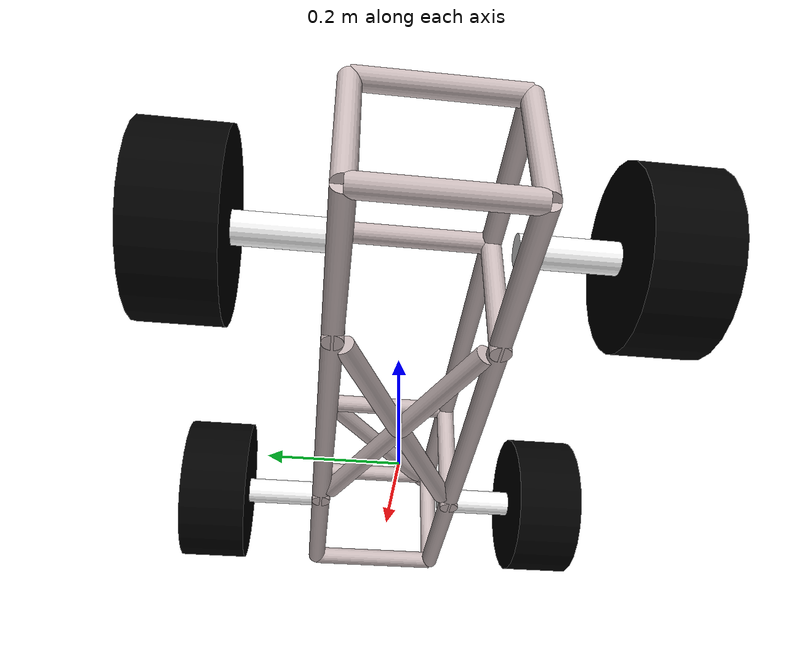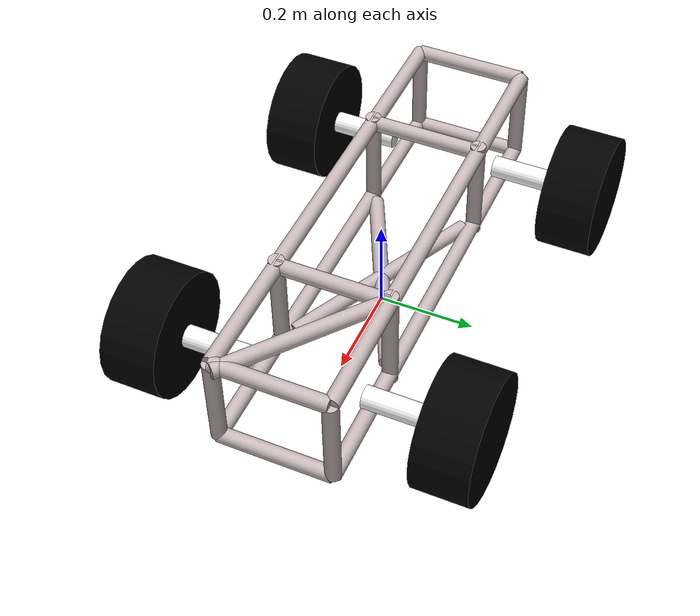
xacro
<?xml version="1.0"?>
<robot xmlns:xacro="http://www.ros.org/wiki/xacro">

    <xacro:include filename="inertial_macros.xacro"/>

    <!-- Colour options for robot -->
    <material name="blue">
        <color rgba="0.2 0.2 1.0 1.0"/>
    </material>

    <material name="black">
        <color rgba="0.0 0.0 0.0 1.0"/>
    </material>

    <material name="white">
        <color rgba="1.0 1.0 1.0 1.0"/>
    </material>

    <material name="silver">
        <!--color rgba="0.62 0.62 0.62 0.5"/-->
        <color rgba="0.78 0.72 0.72 1.0"/>
    </material>

    <!-- Base link is centre of the 2 drive wheels -->
    <link name="base_link">

    </link>

    <!-- Left front wheel link -->

    <joint name="left_front_wheel_joint" type="continuous">
        <parent link="base_link" />
        <child link="left_front_wheel"/>
        <origin xyz="-0.34264 -0.309055 0.12725" rpy="-${pi/2} 0 0"/>
        <axis xyz="-0.34264 -0.309055 0.12725"/>
    </joint>

    <link name="left_front_wheel">
        <visual>
            <origin xyz="0 0 0"/>
            <geometry>
                <cylinder radius="0.12725" length="0.1144"/>
            </geometry>
            <material name="black"/>
        </visual>
        <collision>
            <origin xyz="0 0 0"/>v
            <geometry>
                <cylinder radius="0.12725" length="0.1144"/>
            </geometry>
        </collision>
        <xacro:inertial_cylinder mass="0.1" length="0.1144" radius="0.12725">
            <origin xyz="0 0 0" rpy="0 0 0"/>
        </xacro:inertial_cylinder>
    </link>

    <!-- To show colour on gazebo -->

    <gazebo reference="left_front_wheel">
        <material>Gazebo/Black</material>
    </gazebo>

    <!-- Left back wheel link -->

    <joint name="left_back_wheel_joint" type="continuous">
        <parent link="base_link" />
        <child link="left_back_wheel"/>
        <origin xyz="0.34264 -0.309055 0.12725" rpy="-${pi/2} 0 0"/>
        <axis xyz="0.34264 -0.309055 0.12725"/>
    </joint>

    <link name="left_back_wheel">
        <visual>
            <origin xyz="0 0 0"/>
            <geometry>
                <cylinder radius="0.12725" length="0.1144"/>
            </geometry>
            <material name="black"/>
        </visual>
        <collision>
            <origin xyz="0 0 0"/>
            <geometry>
                <cylinder radius="0.12725" length="0.1144"/>
            </geometry>
        </collision>
        <xacro:inertial_cylinder mass="0.1" length="0.1144" radius="0.12725">
            <origin xyz="0 0 0" rpy="0 0 0"/>
        </xacro:inertial_cylinder>
    </link>

    <gazebo reference="left_back_wheel">
        <material>Gazebo/Black</material>
    </gazebo>

     <!-- Right front wheel link -->

    <joint name="right_front_wheel_joint" type="continuous">
        <parent link="base_link" />
        <child link="right_front_wheel"/>
        <origin xyz="-0.34264 0.309055 0.12725" rpy="${pi/2} 0 0"/>
        <axis xyz="-0.34264 0.309055 0.12725"/>
    </joint>

    <link name="right_front_wheel">
        <visual>
            <origin xyz="0 0 0"/>
            <geometry>
                <cylinder radius="0.12725" length="0.1144"/>
            </geometry>
            <material name="black"/>
        </visual>
        <collision>
            <origin xyz="0 0 0"/>
            <geometry>
                <cylinder radius="0.12725" length="0.1144"/>
            </geometry>
        </collision>
        <xacro:inertial_cylinder mass="0.1" length="0.1144" radius="0.12725">
            <origin xyz="0 0 0" rpy="0 0 0"/>
        </xacro:inertial_cylinder>
    </link>

    <gazebo reference="right_front_wheel">
        <material>Gazebo/Black</material>
    </gazebo>

     <!-- Right back wheel link -->

    <joint name="right_back_wheel_joint" type="continuous">
        <parent link="base_link" />
        <child link="right_back_wheel"/>
        <origin xyz="0.34264 0.309055 0.12725" rpy="${pi/2} 0 0"/>
        <axis xyz="0.34264 0.309055 0.12725"/>
    </joint>

    <link name="right_back_wheel">
        <visual>
            <origin xyz="0 0 0"/>
            <geometry>
                <cylinder radius="0.12725" length="0.1144"/>
            </geometry>
            <material name="black"/>
        </visual>
        <collision>
            <origin xyz="0 0 0"/>
            <geometry>
                <cylinder radius="0.12725" length="0.1144"/>
            </geometry>
        </collision>
        <xacro:inertial_cylinder mass="0.1" length="0.1144" radius="0.12725">
            <origin xyz="0 0 0" rpy="0 0 0"/>
        </xacro:inertial_cylinder>
    </link>

    <gazebo reference="right_back_wheel">
        <material>Gazebo/Black</material>
    </gazebo>

    <!-- Left front suspension -->

    <joint name="left_front_suspension_joint" type="continuous">
        <parent link="base_link"/>
        <child link="left_front_suspension"/>
        <origin xyz="-0.34264 -0.183735 0.12725" rpy="${pi/2} 0 0"/>
        <axis xyz="-0.34264 -0.183735 0.12725"/>
    </joint>

    <link name="left_front_suspension">
        <visual>
            <origin xyz="0 0 0"/>
            <geometry>
                <cylinder radius="0.0225" length="0.13624"/>
            </geometry>
            <material name="white"/>
        </visual>
        <collision>
            <origin xyz="0 0 0"/>
            <geometry>
                <cylinder radius="0.0225" length="0.13624"/>
            </geometry>
        </collision>
        <xacro:inertial_cylinder mass="0.1" length="0.13624" radius="0.0225">
            <origin xyz="0 0 0" rpy="0 0 0"/>
        </xacro:inertial_cylinder>
    </link>

    <gazebo reference="left_front_suspension">
        <material>Gazebo/White</material>
    </gazebo>

    <!-- Left back suspension -->

    <joint name="left_back_suspension_joint" type="continuous">
        <parent link="base_link"/>
        <child link="left_back_suspension"/>
        <origin xyz="0.34264 -0.183735 0.12725" rpy="${pi/2} 0 0"/>
        <axis xyz="0.34264 -0.183735 0.12725"/>
    </joint>

    <link name="left_back_suspension">
        <visual>
            <origin xyz="0 0 0"/>
            <geometry>
                <cylinder radius="0.0225" length="0.13624"/>
            </geometry>
            <material name="white"/>
        </visual>
        <collision>
            <origin xyz="0 0 0"/>
            <geometry>
                <cylinder radius="0.0255" length="0.13624"/>
            </geometry>
        </collision>
        <xacro:inertial_cylinder mass="0.1" length="0.13624" radius="0.0225">
            <origin xyz="0 0 0" rpy="0 0 0"/>
        </xacro:inertial_cylinder>
    </link>

    <gazebo reference="left_back_suspension">
        <material>Gazebo/White</material>
    </gazebo>

    <!-- Right front suspension -->

    <joint name="right_front_suspension_joint" type="continuous">
        <parent link="base_link"/>
        <child link="right_front_suspension"/>
        <origin xyz="-0.34264 0.183735 0.12725" rpy="${pi/2} 0 0"/>
        <axis xyz="-0.34264 0.183735 0.12725"/>
    </joint>

    <link name="right_front_suspension">
        <visual>
            <origin xyz="0 0 0"/>
            <geometry>
                <cylinder radius="0.0225" length="0.13624"/>
            </geometry>
            <material name="white"/>
        </visual>
        <collision>
            <origin xyz="0 0 0"/>
            <geometry>
                <cylinder radius="0.0225" length="0.13624"/>
            </geometry>
        </collision>
        <xacro:inertial_cylinder mass="0.1" length="0.13624" radius="0.0255">
            <origin xyz="0 0 0" rpy="0 0 0"/>
        </xacro:inertial_cylinder>
    </link>

    <gazebo reference="right_front_suspension">
        <material>Gazebo/White</material>
    </gazebo>

    <!-- Right back suspension -->

    <joint name="right_back_suspension_joint" type="continuous">
        <parent link="base_link"/>
        <child link="right_back_suspension"/>
        <origin xyz="0.34264 0.183735 0.12725" rpy="${pi/2} 0 0"/>
        <axis xyz="0.34264 0.183735 0.12725"/>
    </joint>

    <link name="right_back_suspension">
        <visual>
            <origin xyz="0 0 0"/>
            <geometry>
                <cylinder radius="0.0225" length="0.13624"/>
            </geometry>
            <material name="white"/>
        </visual>
        <collision>
            <origin xyz="0 0 0"/>
            <geometry>
                <cylinder radius="0.0225" length="0.13624"/>
            </geometry>
        </collision>
        <xacro:inertial_cylinder mass="0.1" length="0.13624" radius="0.0225">
            <origin xyz="0 0 0" rpy="0 0 0"/>
        </xacro:inertial_cylinder>
    </link>

    <gazebo reference="right_back_suspension">
        <material>Gazebo/White</material>
    </gazebo>

    <!-- Chassis pole top right (l/d 964.3/15.88)-->

    <joint name="chassis_pole_tr_joint" type="fixed">
        <parent link="base_link"/>
        <child link="chassis_pole_tr"/>
        <origin xyz="0 0.115615 0.26225" rpy="0 ${pi/2} 0"/>
        <axis xyz="0 0.115615 0.26225"/>
    </joint>

    <link name="chassis_pole_tr">
        <visual>
            <origin xyz="0 0 0"/>
            <geometry>
                <cylinder radius="0.01588" length="0.9643"/>
            </geometry>
            <material name="silver"/>
        </visual>
        <collision>
            <origin xyz="0 0 0"/>
            <geometry>
                <cylinder radius="0.01588" length="0.9643"/>
            </geometry>
        </collision>
        <xacro:inertial_cylinder mass="0.1" length="0.9643" radius="0.01588">
            <origin xyz="0 0 0" rpy="0 0 0"/>
        </xacro:inertial_cylinder>
    </link>

    <gazebo reference="chassis_pole_tr">
        <material>Gazebo/Silver</material>
    </gazebo>

    <!-- Chassis pole bottom right -->

    <joint name="chassis_pole_br_joint" type="fixed">
        <parent link="base_link"/>
        <child link="chassis_pole_br"/>
        <origin xyz="0 0.115615 0.06225" rpy="0 ${pi/2} 0"/>
        <axis xyz="0 0.115615 0.06225"/>
    </joint>

    <link name="chassis_pole_br">
        <visual>
            <origin xyz="0 0 0"/>
            <geometry>
                <cylinder radius="0.01588" length="00.9643"/>
            </geometry>
            <material name="silver"/>
        </visual>
        <collision>
            <origin xyz="0 0 0"/>
            <geometry>
                <cylinder radius="0.01588" length="0.9643"/>
            </geometry>
        </collision>
        <xacro:inertial_cylinder mass="0.1" length="0.9643" radius="0.01588">
            <origin xyz="0 0 0" rpy="0 0 0"/>
        </xacro:inertial_cylinder>
    </link>

    <gazebo reference="chassis_pole_br">
        <material>Gazebo/Silver</material>
    </gazebo>

    <!-- Chassis pole top left -->

    <joint name="chassis_pole_tl_joint" type="fixed">
        <parent link="base_link"/>
        <child link="chassis_pole_tl"/>
        <origin xyz="0 -0.115615 0.26225" rpy="0 ${pi/2} 0"/>
        <axis xyz="0 -0.115615 0.26225"/>
    </joint>

    <link name="chassis_pole_tl">
        <visual>
            <origin xyz="0 0 0"/>
            <geometry>
                <cylinder radius="0.01588" length="0.9643"/>
            </geometry>
            <material name="silver"/>
        </visual>
        <collision>
            <origin xyz="0 0 0"/>
            <geometry>
                <cylinder radius="0.01588" length="0.9643"/>
            </geometry>
        </collision>
        <xacro:inertial_cylinder mass="0.1" length="0.9643" radius="0.01588">
            <origin xyz="0 0 0" rpy="0 0 0"/>
        </xacro:inertial_cylinder>
    </link>

    <gazebo reference="chassis_pole_tl">
        <material>Gazebo/Silver</material>
    </gazebo>

    <!-- Chassis pole bottom left -->

    <joint name="chassis_pole_bl_joint" type="fixed">
        <parent link="base_link"/>
        <child link="chassis_pole_bl"/>
        <origin xyz="0 -0.115615 0.06225" rpy="0 ${pi/2} 0"/>
        <axis xyz="0 -0.115615 0.06225"/>
    </joint>

    <link name="chassis_pole_bl">
        <visual>
            <origin xyz="0 0 0"/>
            <geometry>
                <cylinder radius="0.01588" length="0.9643"/>
            </geometry>
            <material name="silver"/>
        </visual>
        <collision>
            <origin xyz="0 0 0"/>
            <geometry>
                <cylinder radius="0.01588" length="0.9643"/>
            </geometry>
        </collision>
        <xacro:inertial_cylinder mass="0.1" length="0.9643" radius="0.01588">
            <origin xyz="0 0 0" rpy="0 0 0"/>
        </xacro:inertial_cylinder>
    </link>

    <gazebo reference="chassis_pole_bl">
        <material>Gazebo/Silver</material>
    </gazebo>

    <!-- Chassis pole bottom front -->

    <joint name="chassis_pole_bf_joint" type="fixed">
        <parent link="base_link"/>
        <child link="chassis_pole_bf"/>
        <origin xyz="-0.48215 0 0.06225" rpy="${pi/2} 0 0"/>
        <axis xyz="-0.48215 0 0.06225"/>
    </joint>

    <link name="chassis_pole_bf">
        <visual>
            <origin xyz="0 0 0"/>
            <geometry>
                <cylinder radius="0.01588" length="0.23123"/>
            </geometry>
            <material name="silver"/>
        </visual>
        <collision>
            <origin xyz="0 0 0"/>
            <geometry>
                <cylinder radius="0.01588" length="0.23123"/>
            </geometry>
        </collision>
        <xacro:inertial_cylinder mass="0.1" length="0.23123" radius="0.01588">
            <origin xyz="0 0 0" rpy="0 0 0"/>
        </xacro:inertial_cylinder>
    </link>

    <gazebo reference="chassis_pole_bf">
        <material>Gazebo/Silver</material>
    </gazebo>

    <!-- Chassis pole top front -->

    <joint name="chassis_pole_tf_joint" type="fixed">
        <parent link="base_link"/>
        <child link="chassis_pole_tf"/>
        <origin xyz="-0.48215 0 0.26226" rpy="${pi/2} 0 0"/>
        <axis xyz="-0.48215 0 0.26225"/>
    </joint>

    <link name="chassis_pole_tf">
        <visual>
            <origin xyz="0 0 0"/>
            <geometry>
                <cylinder radius="0.01588" length="0.23123"/>
            </geometry>
            <material name="silver"/>
        </visual>
        <collision>
            <origin xyz="0 0 0"/>
            <geometry>
                <cylinder radius="0.01588" length="0.23123"/>
            </geometry>
        </collision>
        <xacro:inertial_cylinder mass="0.1" length="0.23123" radius="0.01588">
            <origin xyz="0 0 0" rpy="0 0 0"/>
        </xacro:inertial_cylinder>
    </link>

    <gazebo reference="chassis_pole_tf">
        <material>Gazebo/Silver</material>
    </gazebo>

    <!-- Chassis pole bottom back -->

    <joint name="chassis_pole_bb_joint" type="fixed">
        <parent link="base_link"/>
        <child link="chassis_pole_bb"/>
        <origin xyz="0.48215 0 0.06225" rpy="${pi/2} 0 0"/>
        <axis xyz="0.48215 0 0.06225"/>
    </joint>

    <link name="chassis_pole_bb">
        <visual>
            <origin xyz="0 0 0"/>
            <geometry>
                <cylinder radius="0.01588" length="0.23123"/>
            </geometry>
            <material name="silver"/>
        </visual>
        <collision>
            <origin xyz="0 0 0"/>
            <geometry>
                <cylinder radius="0.01588" length="0.23123"/>
            </geometry>
        </collision>
        <xacro:inertial_cylinder mass="0.1" length="0.23123" radius="0.01588">
            <origin xyz="0 0 0" rpy="0 0 0"/>
        </xacro:inertial_cylinder>
    </link>

    <gazebo reference="chassis_pole_bb">
        <material>Gazebo/Silver</material>
    </gazebo>

    <!-- Chassis pole top back -->

    <joint name="chassis_pole_tb_joint" type="fixed">
        <parent link="base_link"/>
        <child link="chassis_pole_tb"/>
        <origin xyz="0.48215 0 0.26225" rpy="${pi/2} 0 0"/>
        <axis xyz="0.48215 0 0.26225"/>
    </joint>

    <link name="chassis_pole_tb">
        <visual>
            <origin xyz="0 0 0"/>
            <geometry>
                <cylinder radius="0.01588" length="0.23123"/>
            </geometry>
            <material name="silver"/>
        </visual>
        <collision>
            <origin xyz="0 0 0"/>
            <geometry>
                <cylinder radius="0.01588" length="0.23123"/>
            </geometry>
        </collision>
        <xacro:inertial_cylinder mass="0.1" length="0.23123" radius="0.01588">
            <origin xyz="0 0 0" rpy="0 0 0"/>
        </xacro:inertial_cylinder>
    </link>

    <gazebo reference="chassis_pole_tb">
        <material>Gazebo/Silver</material>
    </gazebo>

    <!-- Chassis pole vertical front left -->

    <joint name="chassis_pole_vfl_joint" type="fixed">
        <parent link="base_link"/>
        <child link="chassis_pole_vfl"/>
        <origin xyz="-0.48215 -0.115615 0.16225" rpy="0 0 0"/>
        <axis xyz="-0.48215 -0.115615 0.16225"/>
    </joint>

    <link name="chassis_pole_vfl">
        <visual>
            <origin xyz="0 0 0"/>
            <geometry>
                <cylinder radius="0.01588" length="0.2"/>
            </geometry>
            <material name="silver"/>
        </visual>
        <collision>
            <origin xyz="0 0 0"/>
            <geometry>
                <cylinder radius="0.01588" length="0.2"/>
            </geometry>
        </collision>
        <xacro:inertial_cylinder mass="0.1" length="0.2" radius="0.01588">
            <origin xyz="0 0 0" rpy="0 0 0"/>
        </xacro:inertial_cylinder>
    </link>

    <gazebo reference="chassis_pole_vfl">
        <material>Gazebo/Silver</material>
    </gazebo>

    <!-- Chassis pole vertical front right -->

    <joint name="chassis_pole_vfr_joint" type="fixed">
        <parent link="base_link"/>
        <child link="chassis_pole_vfr"/>
        <origin xyz="-0.48215 0.115615 0.16225" rpy="0 0 0"/>
        <axis xyz="-0.48215 0.115615 0.16225"/>
    </joint>

    <link name="chassis_pole_vfr">
        <visual>
            <origin xyz="0 0 0"/>
            <geometry>
                <cylinder radius="0.01588" length="0.2"/>
            </geometry>
            <material name="silver"/>
        </visual>
        <collision>
            <origin xyz="0 0 0"/>
            <geometry>
                <cylinder radius="0.01588" length="0.2"/>
            </geometry>
        </collision>
        <xacro:inertial_cylinder mass="0.1" length="0.2" radius="0.01588">
            <origin xyz="0 0 0" rpy="0 0 0"/>
        </xacro:inertial_cylinder>
    </link>

    <gazebo reference="chassis_pole_vfr">
        <material>Gazebo/Silver</material>
    </gazebo>

    <!-- Chassis pole vertical back left -->

    <joint name="chassis_pole_vbl_joint" type="fixed">
        <parent link="base_link"/>
        <child link="chassis_pole_vbl"/>
        <origin xyz="0.48215 -0.115615 0.16225" rpy="0 0 0"/>
        <axis xyz="0.48215 -0.115615 0.16225"/>
    </joint>

    <link name="chassis_pole_vbl">
        <visual>
            <origin xyz="0 0 0"/>
            <geometry>
                <cylinder radius="0.01588" length="0.2"/>
            </geometry>
            <material name="silver"/>
        </visual>
        <collision>
            <origin xyz="0 0 0"/>
            <geometry>
                <cylinder radius="0.01588" length="0.2"/>
            </geometry>
        </collision>
        <xacro:inertial_cylinder mass="0.1" length="0.2" radius="0.01588">
            <origin xyz="0 0 0" rpy="0 0 0"/>
        </xacro:inertial_cylinder>
    </link>

    <gazebo reference="chassis_pole_vbl">
        <material>Gazebo/Silver</material>
    </gazebo>

    <!-- Chassis pole vertical back right -->

    <joint name="chassis_pole_vbr_joint" type="fixed">
        <parent link="base_link"/>
        <child link="chassis_pole_vbr"/>
        <origin xyz="0.48215 0.115165 0.16225" rpy="0 0 0"/>
        <axis xyz="0.48215 0.115615 0.16225"/>
    </joint>

    <link name="chassis_pole_vbr">
        <visual>
            <origin xyz="0 0 0"/>
            <geometry>
                <cylinder radius="0.01588" length="0.2"/>
            </geometry>
            <material name="silver"/>
        </visual>
        <collision>
            <origin xyz="0 0 0"/>
            <geometry>
                <cylinder radius="0.01588" length="0.2"/>
            </geometry>
        </collision>
        <xacro:inertial_cylinder mass="0.1" length="0.2" radius="0.01588">
            <origin xyz="0 0 0" rpy="0 0 0"/>
        </xacro:inertial_cylinder>
    </link>

    <gazebo reference="chassis_pole_vbr">
        <material>Gazebo/Silver</material>
    </gazebo>

    <!-- Chassis pole top back angle -->

    <joint name="chassis_pole_tba_joint" type="fixed">
        <parent link="base_link"/>
        <child link="chassis_pole_tba"/>
        <origin xyz="0.36351 0 0.26225" rpy="0 ${pi/2} -0.67648962"/>
        <axis xyz="0.36351 0 0.26225"/>
    </joint>

    <link name="chassis_pole_tba">
        <visual>
            <origin xyz="0 0 0"/>
            <geometry>
                <cylinder radius="0.01588" length="0.34231"/>
            </geometry>
            <material name="silver"/>
        </visual>
        <collision>
            <origin xyz="0 0 0"/>
            <geometry>
                <cylinder radius="0.01588" length="0.34231"/>
            </geometry>
        </collision>
        <xacro:inertial_cylinder mass="0.1" length="0.34231" radius="0.01588">
            <origin xyz="0 0 0" rpy="0 0 0"/>
        </xacro:inertial_cylinder>
    </link>

    <gazebo reference="chassis_pole_tba">
        <material>Gazebo/Silver</material>
    </gazebo>

 <!-- Chassis pole top back straight -->

    <joint name="chassis_pole_tbs_joint" type="fixed">
        <parent link="base_link"/>
        <child link="chassis_pole_tbs"/>
        <origin xyz="0.2237 0 0.26225" rpy="0 ${pi/2} ${pi/2}"/>
        <axis xyz="0.2237 0 0.26225"/>
    </joint>

    <link name="chassis_pole_tbs">
        <visual>
            <origin xyz="0 0 0"/>
            <geometry>
                <cylinder radius="0.01588" length="0.23123"/>
            </geometry>
            <material name="silver"/>
        </visual>
        <collision>
            <origin xyz="0 0 0"/>
            <geometry>
                <cylinder radius="0.01588" length="0.23123"/>
            </geometry>
        </collision>
        <xacro:inertial_cylinder mass="0.1" length="0.23123" radius="0.01588">
            <origin xyz="0 0 0" rpy="0 0 0"/>
        </xacro:inertial_cylinder>
    </link>

    <gazebo reference="chassis_pole_tbs">
        <material>Gazebo/Silver</material>
    </gazebo>

    <!-- Chassis pole left back straight -->

    <joint name="chassis_pole_lbs_joint" type="fixed">
        <parent link="base_link"/>
        <child link="chassis_pole_lbs"/>
        <origin xyz="0.2237 -0.115165 0.16225" rpy="0 0 0"/>
        <axis xyz="0.2237 -0.115165 0.16225"/>
    </joint>

    <link name="chassis_pole_lbs">
        <visual>
            <origin xyz="0 0 0"/>
            <geometry>
                <cylinder radius="0.01588" length="0.23123"/>
            </geometry>
            <material name="silver"/>
        </visual>
        <collision>
            <origin xyz="0 0 0"/>
            <geometry>
                <cylinder radius="0.01588" length="0.23123"/>
            </geometry>
        </collision>
        <xacro:inertial_cylinder mass="0.1" length="0.23123" radius="0.01588">
            <origin xyz="0 0 0" rpy="0 0 0"/>
        </xacro:inertial_cylinder>
    </link>

    <gazebo reference="chassis_pole_lbs">
        <material>Gazebo/Silver</material>
    </gazebo>

    <!-- Chassis pole right back straight -->

    <joint name="chassis_pole_rbs_joint" type="fixed">
        <parent link="base_link"/>
        <child link="chassis_pole_rbs"/>
        <origin xyz="0.2237 0.115165 0.16225" rpy="0 0 0"/>
        <axis xyz="0.2237 0.115165 0.16225"/>
    </joint>

    <link name="chassis_pole_rbs">
        <visual>
            <origin xyz="0 0 0"/>
            <geometry>
                <cylinder radius="0.01588" length="0.23123"/>
            </geometry>
            <material name="silver"/>
        </visual>
        <collision>
            <origin xyz="0 0 0"/>
            <geometry>
                <cylinder radius="0.01588" length="0.23123"/>
            </geometry>
        </collision>
        <xacro:inertial_cylinder mass="0.1" length="0.23123" radius="0.01588">
            <origin xyz="0 0 0" rpy="0 0 0"/>
        </xacro:inertial_cylinder>
    </link>

    <gazebo reference="chassis_pole_rbs">
        <material>Gazebo/Silver</material>
    </gazebo>

 <!-- Chassis pole top front straight -->

    <joint name="chassis_pole_tfs_joint" type="fixed">
        <parent link="base_link"/>
        <child link="chassis_pole_tfs"/>
        <origin xyz="-0.2237 0 0.26225" rpy="0 ${pi/2} ${pi/2}"/>
        <axis xyz="-0.2237 0 0.26225"/>
    </joint>

    <link name="chassis_pole_tfs">
        <visual>
            <origin xyz="0 0 0"/>
            <geometry>
                <cylinder radius="0.01588" length="0.23123"/>
            </geometry>
            <material name="silver"/>
        </visual>
        <collision>
            <origin xyz="0 0 0"/>
            <geometry>
                <cylinder radius="0.01588" length="0.23123"/>
            </geometry>
        </collision>
        <xacro:inertial_cylinder mass="0.1" length="0.23123" radius="0.01588">
            <origin xyz="0 0 0" rpy="0 0 0"/>
        </xacro:inertial_cylinder>
    </link>

    <gazebo reference="chassis_pole_tfs">
        <material>Gazebo/Silver</material>
    </gazebo>

    <!-- Chassis pole left front straight -->

    <joint name="chassis_pole_lfs_joint" type="fixed">
        <parent link="base_link"/>
        <child link="chassis_pole_lfs"/>
        <origin xyz="-0.2237 -0.115165 0.16225" rpy="0 0 0"/>
        <axis xyz="-0.2237 -0.115165 0.16225"/>
    </joint>

    <link name="chassis_pole_lfs">
        <visual>
            <origin xyz="0 0 0"/>
            <geometry>
                <cylinder radius="0.01588" length="0.23123"/>
            </geometry>
            <material name="silver"/>
        </visual>
        <collision>
            <origin xyz="0 0 0"/>
            <geometry>
                <cylinder radius="0.01588" length="0.23123"/>
            </geometry>
        </collision>
        <xacro:inertial_cylinder mass="0.1" length="0.23123" radius="0.01588">
            <origin xyz="0 0 0" rpy="0 0 0"/>
        </xacro:inertial_cylinder>
    </link>

    <gazebo reference="chassis_pole_lfs">
        <material>Gazebo/Silver</material>
    </gazebo>

    <!-- Chassis pole right front straight -->

    <joint name="chassis_pole_rfs_joint" type="fixed">
        <parent link="base_link"/>
        <child link="chassis_pole_rfs"/>
        <origin xyz="-0.2237 0.115165 0.16225" rpy="0 0 0"/>
        <axis xyz="-0.2237 0.115165 0.16225"/>
    </joint>

    <link name="chassis_pole_rfs">
        <visual>
            <origin xyz="0 0 0"/>
            <geometry>
                <cylinder radius="0.01588" length="0.23123"/>
            </geometry>
            <material name="silver"/>
        </visual>
        <collision>
            <origin xyz="0 0 0"/>
            <geometry>
                <cylinder radius="0.01588" length="0.23123"/>
            </geometry>
        </collision>
        <xacro:inertial_cylinder mass="0.1" length="0.23123" radius="0.01588">
            <origin xyz="0 0 0" rpy="0 0 0"/>
        </xacro:inertial_cylinder>
    </link>

    <gazebo reference="chassis_pole_rfs">
        <material>Gazebo/Silver</material>
    </gazebo>

 <!-- Chassis pole bottom cross -->

    <joint name="chassis_pole_bc_joint" type="fixed">
        <parent link="base_link"/>
        <child link="chassis_pole_bc"/>
        <origin xyz="0 0 0.06225" rpy="0 ${pi/2} 0.4569272"/>
        <axis xyz="0 0 0.06225"/>
    </joint>

    <link name="chassis_pole_bc">
        <visual>
            <origin xyz="0 0 0"/>
            <geometry>
                <cylinder radius="0.01588" length="0.45167"/>
            </geometry>
            <material name="silver"/>
        </visual>
        <collision>
            <origin xyz="0 0 0"/>
            <geometry>
                <cylinder radius="0.01588" length="0.45167"/>
            </geometry>
        </collision>
        <xacro:inertial_cylinder mass="0.1" length="0.45167" radius="0.01588">
            <origin xyz="0 0 0" rpy="0 0 0"/>
        </xacro:inertial_cylinder>
    </link>

    <gazebo reference="chassis_pole_bc">
        <material>Gazebo/Silver</material>
    </gazebo>

    <!-- Chassis pole bottom cross cross-->

    <joint name="chassis_pole_bcc_joint" type="fixed">
        <parent link="base_link"/>
        <child link="chassis_pole_bcc"/>
        <origin xyz="0 0 0.06225" rpy="0 ${pi/2} -0.4569272"/>
        <axis xyz="0 0 0.06225"/>
    </joint>

    <link name="chassis_pole_bcc">
        <visual>
            <origin xyz="0 0 0"/>
            <geometry>
                <cylinder radius="0.01588" length="0.45167"/>
            </geometry>
            <material name="silver"/>
        </visual>
        <collision>
            <origin xyz="0 0 0"/>
            <geometry>
                <cylinder radius="0.01588" length="0.45167"/>
            </geometry>
        </collision>
        <xacro:inertial_cylinder mass="0.1" length="0.45167" radius="0.01588">
            <origin xyz="0 0 0" rpy="0 0 0"/>
        </xacro:inertial_cylinder>
    </link>

    <gazebo reference="chassis_pole_bcc">
        <material>Gazebo/Silver</material>
    </gazebo>

</robot>
